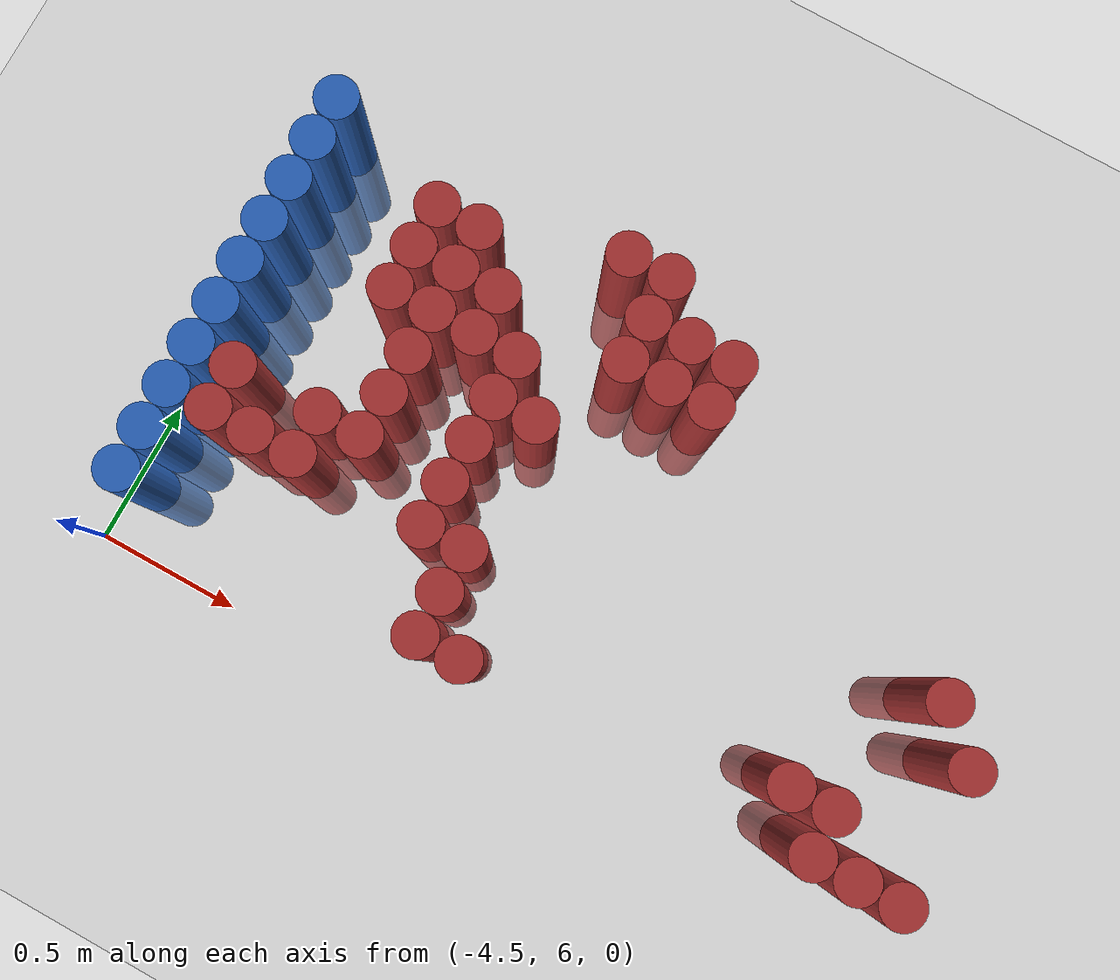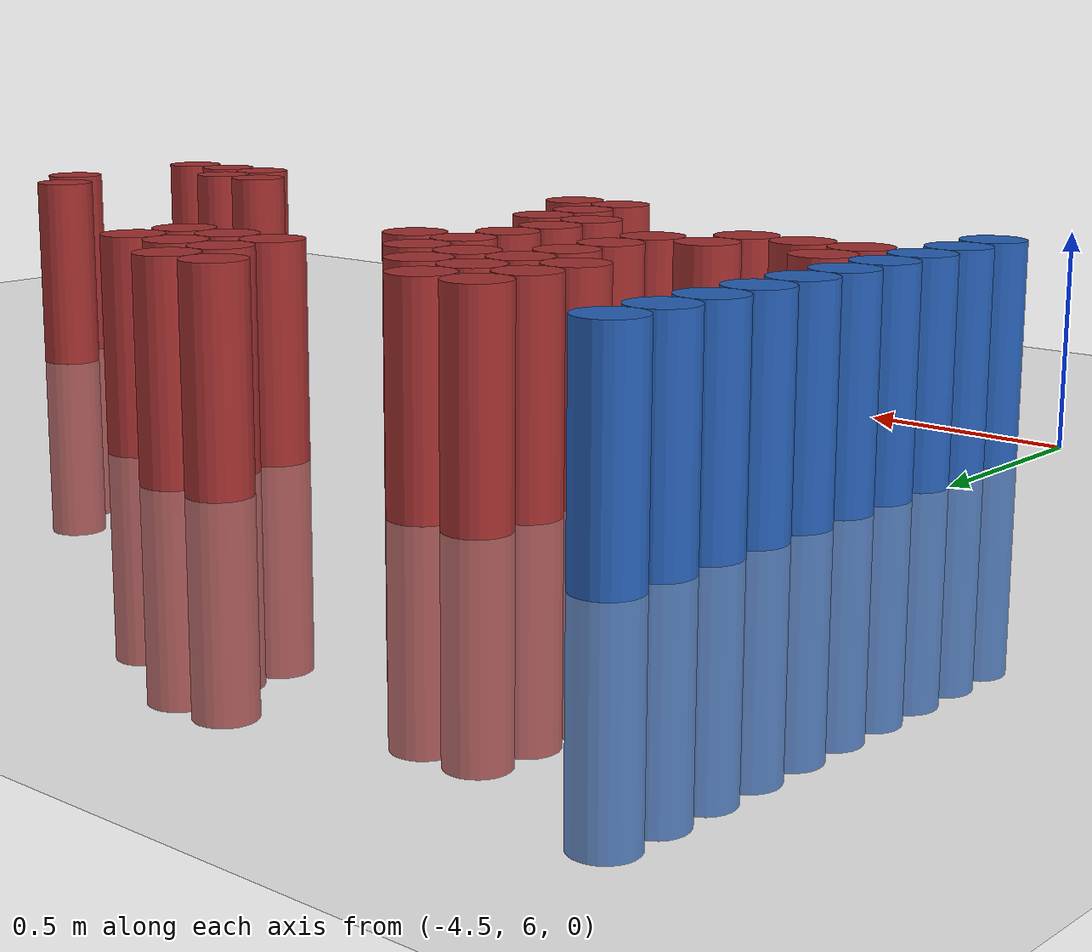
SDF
<sdf version="1.6">
 <world name="default">
  <model name="ground_plane">
   <static>1</static>
   <link name="link">
    <collision name="collision">
     <geometry><plane><normal>0 0 1</normal><size>100 100</size></plane></geometry>
     <surface><friction><ode><mu>100</mu><mu2>50</mu2></ode></friction></surface>
    </collision>
    <visual name="visual">
     <cast_shadows>0</cast_shadows>
     <geometry><plane><normal>0 0 1</normal><size>100 100</size></plane></geometry>
     <material>
      <script><uri>file://media/materials/scripts/gazebo.material</uri><name>Gazebo/Grey</name></script>
     </material>
    </visual>
   </link>
  </model>
  <model name="unit_cylinder_103">
   <static>1</static>
   <pose>-4.425000 6.225000 0.000000 0.000000 0.000000 0.000000</pose>
   <link name="link">
    <inertial>
     <mass>1</mass>
     <inertia><ixx>0.145833</ixx><ixy>0</ixy><ixz>0</ixz><iyy>0.145833</iyy><iyz>0</iyz><izz>0.125</izz></inertia>
    </inertial>
    <collision name="collision">
     <geometry><cylinder><radius>0.075000</radius><length>1</length></cylinder></geometry>
    </collision>
    <visual name="visual">
     <geometry><cylinder><radius>0.075000</radius><length>1</length></cylinder></geometry>
     <material>
      <ambient>0.152000 0.379000 0.720000 1</ambient>
      <diffuse>0.152000 0.379000 0.720000 1</diffuse>
     </material>
     <material>
      <script><name>Gazebo/Grey</name><uri>file://media/materials/scripts/gazebo.material</uri></script>
     </material>
    </visual>
   </link>
  </model>
  <model name="unit_cylinder_104">
   <static>1</static>
   <pose>-4.425000 6.375000 0.000000 0.000000 0.000000 0.000000</pose>
   <link name="link">
    <inertial>
     <mass>1</mass>
     <inertia><ixx>0.145833</ixx><ixy>0</ixy><ixz>0</ixz><iyy>0.145833</iyy><iyz>0</iyz><izz>0.125</izz></inertia>
    </inertial>
    <collision name="collision">
     <geometry><cylinder><radius>0.075000</radius><length>1</length></cylinder></geometry>
    </collision>
    <visual name="visual">
     <geometry><cylinder><radius>0.075000</radius><length>1</length></cylinder></geometry>
     <material>
      <ambient>0.152000 0.379000 0.720000 1</ambient>
      <diffuse>0.152000 0.379000 0.720000 1</diffuse>
     </material>
     <material>
      <script><name>Gazebo/Grey</name><uri>file://media/materials/scripts/gazebo.material</uri></script>
     </material>
    </visual>
   </link>
  </model>
  <model name="unit_cylinder_105">
   <static>1</static>
   <pose>-4.425000 6.525000 0.000000 0.000000 0.000000 0.000000</pose>
   <link name="link">
    <inertial>
     <mass>1</mass>
     <inertia><ixx>0.145833</ixx><ixy>0</ixy><ixz>0</ixz><iyy>0.145833</iyy><iyz>0</iyz><izz>0.125</izz></inertia>
    </inertial>
    <collision name="collision">
     <geometry><cylinder><radius>0.075000</radius><length>1</length></cylinder></geometry>
    </collision>
    <visual name="visual">
     <geometry><cylinder><radius>0.075000</radius><length>1</length></cylinder></geometry>
     <material>
      <ambient>0.152000 0.379000 0.720000 1</ambient>
      <diffuse>0.152000 0.379000 0.720000 1</diffuse>
     </material>
     <material>
      <script><name>Gazebo/Grey</name><uri>file://media/materials/scripts/gazebo.material</uri></script>
     </material>
    </visual>
   </link>
  </model>
  <model name="unit_cylinder_106">
   <static>1</static>
   <pose>-4.425000 6.675000 0.000000 0.000000 0.000000 0.000000</pose>
   <link name="link">
    <inertial>
     <mass>1</mass>
     <inertia><ixx>0.145833</ixx><ixy>0</ixy><ixz>0</ixz><iyy>0.145833</iyy><iyz>0</iyz><izz>0.125</izz></inertia>
    </inertial>
    <collision name="collision">
     <geometry><cylinder><radius>0.075000</radius><length>1</length></cylinder></geometry>
    </collision>
    <visual name="visual">
     <geometry><cylinder><radius>0.075000</radius><length>1</length></cylinder></geometry>
     <material>
      <ambient>0.152000 0.379000 0.720000 1</ambient>
      <diffuse>0.152000 0.379000 0.720000 1</diffuse>
     </material>
     <material>
      <script><name>Gazebo/Grey</name><uri>file://media/materials/scripts/gazebo.material</uri></script>
     </material>
    </visual>
   </link>
  </model>
  <model name="unit_cylinder_107">
   <static>1</static>
   <pose>-4.425000 6.825000 0.000000 0.000000 0.000000 0.000000</pose>
   <link name="link">
    <inertial>
     <mass>1</mass>
     <inertia><ixx>0.145833</ixx><ixy>0</ixy><ixz>0</ixz><iyy>0.145833</iyy><iyz>0</iyz><izz>0.125</izz></inertia>
    </inertial>
    <collision name="collision">
     <geometry><cylinder><radius>0.075000</radius><length>1</length></cylinder></geometry>
    </collision>
    <visual name="visual">
     <geometry><cylinder><radius>0.075000</radius><length>1</length></cylinder></geometry>
     <material>
      <ambient>0.152000 0.379000 0.720000 1</ambient>
      <diffuse>0.152000 0.379000 0.720000 1</diffuse>
     </material>
     <material>
      <script><name>Gazebo/Grey</name><uri>file://media/materials/scripts/gazebo.material</uri></script>
     </material>
    </visual>
   </link>
  </model>
  <model name="unit_cylinder_108">
   <static>1</static>
   <pose>-4.425000 6.975000 0.000000 0.000000 0.000000 0.000000</pose>
   <link name="link">
    <inertial>
     <mass>1</mass>
     <inertia><ixx>0.145833</ixx><ixy>0</ixy><ixz>0</ixz><iyy>0.145833</iyy><iyz>0</iyz><izz>0.125</izz></inertia>
    </inertial>
    <collision name="collision">
     <geometry><cylinder><radius>0.075000</radius><length>1</length></cylinder></geometry>
    </collision>
    <visual name="visual">
     <geometry><cylinder><radius>0.075000</radius><length>1</length></cylinder></geometry>
     <material>
      <ambient>0.152000 0.379000 0.720000 1</ambient>
      <diffuse>0.152000 0.379000 0.720000 1</diffuse>
     </material>
     <material>
      <script><name>Gazebo/Grey</name><uri>file://media/materials/scripts/gazebo.material</uri></script>
     </material>
    </visual>
   </link>
  </model>
  <model name="unit_cylinder_109">
   <static>1</static>
   <pose>-4.425000 7.125000 0.000000 0.000000 0.000000 0.000000</pose>
   <link name="link">
    <inertial>
     <mass>1</mass>
     <inertia><ixx>0.145833</ixx><ixy>0</ixy><ixz>0</ixz><iyy>0.145833</iyy><iyz>0</iyz><izz>0.125</izz></inertia>
    </inertial>
    <collision name="collision">
     <geometry><cylinder><radius>0.075000</radius><length>1</length></cylinder></geometry>
    </collision>
    <visual name="visual">
     <geometry><cylinder><radius>0.075000</radius><length>1</length></cylinder></geometry>
     <material>
      <ambient>0.152000 0.379000 0.720000 1</ambient>
      <diffuse>0.152000 0.379000 0.720000 1</diffuse>
     </material>
     <material>
      <script><name>Gazebo/Grey</name><uri>file://media/materials/scripts/gazebo.material</uri></script>
     </material>
    </visual>
   </link>
  </model>
  <model name="unit_cylinder_110">
   <static>1</static>
   <pose>-4.425000 7.275000 0.000000 0.000000 0.000000 0.000000</pose>
   <link name="link">
    <inertial>
     <mass>1</mass>
     <inertia><ixx>0.145833</ixx><ixy>0</ixy><ixz>0</ixz><iyy>0.145833</iyy><iyz>0</iyz><izz>0.125</izz></inertia>
    </inertial>
    <collision name="collision">
     <geometry><cylinder><radius>0.075000</radius><length>1</length></cylinder></geometry>
    </collision>
    <visual name="visual">
     <geometry><cylinder><radius>0.075000</radius><length>1</length></cylinder></geometry>
     <material>
      <ambient>0.152000 0.379000 0.720000 1</ambient>
      <diffuse>0.152000 0.379000 0.720000 1</diffuse>
     </material>
     <material>
      <script><name>Gazebo/Grey</name><uri>file://media/materials/scripts/gazebo.material</uri></script>
     </material>
    </visual>
   </link>
  </model>
  <model name="unit_cylinder_111">
   <static>1</static>
   <pose>-4.425000 7.425000 0.000000 0.000000 0.000000 0.000000</pose>
   <link name="link">
    <inertial>
     <mass>1</mass>
     <inertia><ixx>0.145833</ixx><ixy>0</ixy><ixz>0</ixz><iyy>0.145833</iyy><iyz>0</iyz><izz>0.125</izz></inertia>
    </inertial>
    <collision name="collision">
     <geometry><cylinder><radius>0.075000</radius><length>1</length></cylinder></geometry>
    </collision>
    <visual name="visual">
     <geometry><cylinder><radius>0.075000</radius><length>1</length></cylinder></geometry>
     <material>
      <ambient>0.152000 0.379000 0.720000 1</ambient>
      <diffuse>0.152000 0.379000 0.720000 1</diffuse>
     </material>
     <material>
      <script><name>Gazebo/Grey</name><uri>file://media/materials/scripts/gazebo.material</uri></script>
     </material>
    </visual>
   </link>
  </model>
  <model name="unit_cylinder_112">
   <static>1</static>
   <pose>-4.425000 7.575000 0.000000 0.000000 0.000000 0.000000</pose>
   <link name="link">
    <inertial>
     <mass>1</mass>
     <inertia><ixx>0.145833</ixx><ixy>0</ixy><ixz>0</ixz><iyy>0.145833</iyy><iyz>0</iyz><izz>0.125</izz></inertia>
    </inertial>
    <collision name="collision">
     <geometry><cylinder><radius>0.075000</radius><length>1</length></cylinder></geometry>
    </collision>
    <visual name="visual">
     <geometry><cylinder><radius>0.075000</radius><length>1</length></cylinder></geometry>
     <material>
      <ambient>0.152000 0.379000 0.720000 1</ambient>
      <diffuse>0.152000 0.379000 0.720000 1</diffuse>
     </material>
     <material>
      <script><name>Gazebo/Grey</name><uri>file://media/materials/scripts/gazebo.material</uri></script>
     </material>
    </visual>
   </link>
  </model>
  <model name="unit_cylinder_127">
   <static>1</static>
   <pose>-4.275000 6.525000 0.000000 0.000000 0.000000 0.000000</pose>
   <link name="link">
    <inertial>
     <mass>1</mass>
     <inertia><ixx>0.145833</ixx><ixy>0</ixy><ixz>0</ixz><iyy>0.145833</iyy><iyz>0</iyz><izz>0.125</izz></inertia>
    </inertial>
    <collision name="collision">
     <geometry><cylinder><radius>0.075000</radius><length>1</length></cylinder></geometry>
    </collision>
    <visual name="visual">
     <geometry><cylinder><radius>0.075000</radius><length>1</length></cylinder></geometry>
     <material>
      <ambient>0.648000 0.192000 0.192000 1</ambient>
      <diffuse>0.648000 0.192000 0.192000 1</diffuse>
     </material>
     <material>
      <script><name>Gazebo/Grey</name><uri>file://media/materials/scripts/gazebo.material</uri></script>
     </material>
    </visual>
   </link>
  </model>
  <model name="unit_cylinder_128">
   <static>1</static>
   <pose>-4.275000 6.675000 0.000000 0.000000 0.000000 0.000000</pose>
   <link name="link">
    <inertial>
     <mass>1</mass>
     <inertia><ixx>0.145833</ixx><ixy>0</ixy><ixz>0</ixz><iyy>0.145833</iyy><iyz>0</iyz><izz>0.125</izz></inertia>
    </inertial>
    <collision name="collision">
     <geometry><cylinder><radius>0.075000</radius><length>1</length></cylinder></geometry>
    </collision>
    <visual name="visual">
     <geometry><cylinder><radius>0.075000</radius><length>1</length></cylinder></geometry>
     <material>
      <ambient>0.648000 0.192000 0.192000 1</ambient>
      <diffuse>0.648000 0.192000 0.192000 1</diffuse>
     </material>
     <material>
      <script><name>Gazebo/Grey</name><uri>file://media/materials/scripts/gazebo.material</uri></script>
     </material>
    </visual>
   </link>
  </model>
  <model name="unit_cylinder_137">
   <static>1</static>
   <pose>-4.125000 6.525000 0.000000 0.000000 0.000000 0.000000</pose>
   <link name="link">
    <inertial>
     <mass>1</mass>
     <inertia><ixx>0.145833</ixx><ixy>0</ixy><ixz>0</ixz><iyy>0.145833</iyy><iyz>0</iyz><izz>0.125</izz></inertia>
    </inertial>
    <collision name="collision">
     <geometry><cylinder><radius>0.075000</radius><length>1</length></cylinder></geometry>
    </collision>
    <visual name="visual">
     <geometry><cylinder><radius>0.075000</radius><length>1</length></cylinder></geometry>
     <material>
      <ambient>0.648000 0.192000 0.192000 1</ambient>
      <diffuse>0.648000 0.192000 0.192000 1</diffuse>
     </material>
     <material>
      <script><name>Gazebo/Grey</name><uri>file://media/materials/scripts/gazebo.material</uri></script>
     </material>
    </visual>
   </link>
  </model>
  <model name="unit_cylinder_144">
   <static>1</static>
   <pose>-3.975000 6.525000 0.000000 0.000000 0.000000 0.000000</pose>
   <link name="link">
    <inertial>
     <mass>1</mass>
     <inertia><ixx>0.145833</ixx><ixy>0</ixy><ixz>0</ixz><iyy>0.145833</iyy><iyz>0</iyz><izz>0.125</izz></inertia>
    </inertial>
    <collision name="collision">
     <geometry><cylinder><radius>0.075000</radius><length>1</length></cylinder></geometry>
    </collision>
    <visual name="visual">
     <geometry><cylinder><radius>0.075000</radius><length>1</length></cylinder></geometry>
     <material>
      <ambient>0.648000 0.192000 0.192000 1</ambient>
      <diffuse>0.648000 0.192000 0.192000 1</diffuse>
     </material>
     <material>
      <script><name>Gazebo/Grey</name><uri>file://media/materials/scripts/gazebo.material</uri></script>
     </material>
    </visual>
   </link>
  </model>
  <model name="unit_cylinder_145">
   <static>1</static>
   <pose>-3.975000 6.675000 0.000000 0.000000 0.000000 0.000000</pose>
   <link name="link">
    <inertial>
     <mass>1</mass>
     <inertia><ixx>0.145833</ixx><ixy>0</ixy><ixz>0</ixz><iyy>0.145833</iyy><iyz>0</iyz><izz>0.125</izz></inertia>
    </inertial>
    <collision name="collision">
     <geometry><cylinder><radius>0.075000</radius><length>1</length></cylinder></geometry>
    </collision>
    <visual name="visual">
     <geometry><cylinder><radius>0.075000</radius><length>1</length></cylinder></geometry>
     <material>
      <ambient>0.648000 0.192000 0.192000 1</ambient>
      <diffuse>0.648000 0.192000 0.192000 1</diffuse>
     </material>
     <material>
      <script><name>Gazebo/Grey</name><uri>file://media/materials/scripts/gazebo.material</uri></script>
     </material>
    </visual>
   </link>
  </model>
  <model name="unit_cylinder_146">
   <static>1</static>
   <pose>-3.975000 7.125000 0.000000 0.000000 0.000000 0.000000</pose>
   <link name="link">
    <inertial>
     <mass>1</mass>
     <inertia><ixx>0.145833</ixx><ixy>0</ixy><ixz>0</ixz><iyy>0.145833</iyy><iyz>0</iyz><izz>0.125</izz></inertia>
    </inertial>
    <collision name="collision">
     <geometry><cylinder><radius>0.075000</radius><length>1</length></cylinder></geometry>
    </collision>
    <visual name="visual">
     <geometry><cylinder><radius>0.075000</radius><length>1</length></cylinder></geometry>
     <material>
      <ambient>0.648000 0.192000 0.192000 1</ambient>
      <diffuse>0.648000 0.192000 0.192000 1</diffuse>
     </material>
     <material>
      <script><name>Gazebo/Grey</name><uri>file://media/materials/scripts/gazebo.material</uri></script>
     </material>
    </visual>
   </link>
  </model>
  <model name="unit_cylinder_147">
   <static>1</static>
   <pose>-3.975000 7.275000 0.000000 0.000000 0.000000 0.000000</pose>
   <link name="link">
    <inertial>
     <mass>1</mass>
     <inertia><ixx>0.145833</ixx><ixy>0</ixy><ixz>0</ixz><iyy>0.145833</iyy><iyz>0</iyz><izz>0.125</izz></inertia>
    </inertial>
    <collision name="collision">
     <geometry><cylinder><radius>0.075000</radius><length>1</length></cylinder></geometry>
    </collision>
    <visual name="visual">
     <geometry><cylinder><radius>0.075000</radius><length>1</length></cylinder></geometry>
     <material>
      <ambient>0.648000 0.192000 0.192000 1</ambient>
      <diffuse>0.648000 0.192000 0.192000 1</diffuse>
     </material>
     <material>
      <script><name>Gazebo/Grey</name><uri>file://media/materials/scripts/gazebo.material</uri></script>
     </material>
    </visual>
   </link>
  </model>
  <model name="unit_cylinder_148">
   <static>1</static>
   <pose>-3.975000 7.425000 0.000000 0.000000 0.000000 0.000000</pose>
   <link name="link">
    <inertial>
     <mass>1</mass>
     <inertia><ixx>0.145833</ixx><ixy>0</ixy><ixz>0</ixz><iyy>0.145833</iyy><iyz>0</iyz><izz>0.125</izz></inertia>
    </inertial>
    <collision name="collision">
     <geometry><cylinder><radius>0.075000</radius><length>1</length></cylinder></geometry>
    </collision>
    <visual name="visual">
     <geometry><cylinder><radius>0.075000</radius><length>1</length></cylinder></geometry>
     <material>
      <ambient>0.648000 0.192000 0.192000 1</ambient>
      <diffuse>0.648000 0.192000 0.192000 1</diffuse>
     </material>
     <material>
      <script><name>Gazebo/Grey</name><uri>file://media/materials/scripts/gazebo.material</uri></script>
     </material>
    </visual>
   </link>
  </model>
  <model name="unit_cylinder_154">
   <static>1</static>
   <pose>-3.825000 6.675000 0.000000 0.000000 0.000000 0.000000</pose>
   <link name="link">
    <inertial>
     <mass>1</mass>
     <inertia><ixx>0.145833</ixx><ixy>0</ixy><ixz>0</ixz><iyy>0.145833</iyy><iyz>0</iyz><izz>0.125</izz></inertia>
    </inertial>
    <collision name="collision">
     <geometry><cylinder><radius>0.075000</radius><length>1</length></cylinder></geometry>
    </collision>
    <visual name="visual">
     <geometry><cylinder><radius>0.075000</radius><length>1</length></cylinder></geometry>
     <material>
      <ambient>0.648000 0.192000 0.192000 1</ambient>
      <diffuse>0.648000 0.192000 0.192000 1</diffuse>
     </material>
     <material>
      <script><name>Gazebo/Grey</name><uri>file://media/materials/scripts/gazebo.material</uri></script>
     </material>
    </visual>
   </link>
  </model>
  <model name="unit_cylinder_155">
   <static>1</static>
   <pose>-3.825000 6.825000 0.000000 0.000000 0.000000 0.000000</pose>
   <link name="link">
    <inertial>
     <mass>1</mass>
     <inertia><ixx>0.145833</ixx><ixy>0</ixy><ixz>0</ixz><iyy>0.145833</iyy><iyz>0</iyz><izz>0.125</izz></inertia>
    </inertial>
    <collision name="collision">
     <geometry><cylinder><radius>0.075000</radius><length>1</length></cylinder></geometry>
    </collision>
    <visual name="visual">
     <geometry><cylinder><radius>0.075000</radius><length>1</length></cylinder></geometry>
     <material>
      <ambient>0.648000 0.192000 0.192000 1</ambient>
      <diffuse>0.648000 0.192000 0.192000 1</diffuse>
     </material>
     <material>
      <script><name>Gazebo/Grey</name><uri>file://media/materials/scripts/gazebo.material</uri></script>
     </material>
    </visual>
   </link>
  </model>
  <model name="unit_cylinder_156">
   <static>1</static>
   <pose>-3.825000 6.975000 0.000000 0.000000 0.000000 0.000000</pose>
   <link name="link">
    <inertial>
     <mass>1</mass>
     <inertia><ixx>0.145833</ixx><ixy>0</ixy><ixz>0</ixz><iyy>0.145833</iyy><iyz>0</iyz><izz>0.125</izz></inertia>
    </inertial>
    <collision name="collision">
     <geometry><cylinder><radius>0.075000</radius><length>1</length></cylinder></geometry>
    </collision>
    <visual name="visual">
     <geometry><cylinder><radius>0.075000</radius><length>1</length></cylinder></geometry>
     <material>
      <ambient>0.648000 0.192000 0.192000 1</ambient>
      <diffuse>0.648000 0.192000 0.192000 1</diffuse>
     </material>
     <material>
      <script><name>Gazebo/Grey</name><uri>file://media/materials/scripts/gazebo.material</uri></script>
     </material>
    </visual>
   </link>
  </model>
  <model name="unit_cylinder_157">
   <static>1</static>
   <pose>-3.825000 7.125000 0.000000 0.000000 0.000000 0.000000</pose>
   <link name="link">
    <inertial>
     <mass>1</mass>
     <inertia><ixx>0.145833</ixx><ixy>0</ixy><ixz>0</ixz><iyy>0.145833</iyy><iyz>0</iyz><izz>0.125</izz></inertia>
    </inertial>
    <collision name="collision">
     <geometry><cylinder><radius>0.075000</radius><length>1</length></cylinder></geometry>
    </collision>
    <visual name="visual">
     <geometry><cylinder><radius>0.075000</radius><length>1</length></cylinder></geometry>
     <material>
      <ambient>0.648000 0.192000 0.192000 1</ambient>
      <diffuse>0.648000 0.192000 0.192000 1</diffuse>
     </material>
     <material>
      <script><name>Gazebo/Grey</name><uri>file://media/materials/scripts/gazebo.material</uri></script>
     </material>
    </visual>
   </link>
  </model>
  <model name="unit_cylinder_158">
   <static>1</static>
   <pose>-3.825000 7.275000 0.000000 0.000000 0.000000 0.000000</pose>
   <link name="link">
    <inertial>
     <mass>1</mass>
     <inertia><ixx>0.145833</ixx><ixy>0</ixy><ixz>0</ixz><iyy>0.145833</iyy><iyz>0</iyz><izz>0.125</izz></inertia>
    </inertial>
    <collision name="collision">
     <geometry><cylinder><radius>0.075000</radius><length>1</length></cylinder></geometry>
    </collision>
    <visual name="visual">
     <geometry><cylinder><radius>0.075000</radius><length>1</length></cylinder></geometry>
     <material>
      <ambient>0.648000 0.192000 0.192000 1</ambient>
      <diffuse>0.648000 0.192000 0.192000 1</diffuse>
     </material>
     <material>
      <script><name>Gazebo/Grey</name><uri>file://media/materials/scripts/gazebo.material</uri></script>
     </material>
    </visual>
   </link>
  </model>
  <model name="unit_cylinder_159">
   <static>1</static>
   <pose>-3.825000 7.425000 0.000000 0.000000 0.000000 0.000000</pose>
   <link name="link">
    <inertial>
     <mass>1</mass>
     <inertia><ixx>0.145833</ixx><ixy>0</ixy><ixz>0</ixz><iyy>0.145833</iyy><iyz>0</iyz><izz>0.125</izz></inertia>
    </inertial>
    <collision name="collision">
     <geometry><cylinder><radius>0.075000</radius><length>1</length></cylinder></geometry>
    </collision>
    <visual name="visual">
     <geometry><cylinder><radius>0.075000</radius><length>1</length></cylinder></geometry>
     <material>
      <ambient>0.648000 0.192000 0.192000 1</ambient>
      <diffuse>0.648000 0.192000 0.192000 1</diffuse>
     </material>
     <material>
      <script><name>Gazebo/Grey</name><uri>file://media/materials/scripts/gazebo.material</uri></script>
     </material>
    </visual>
   </link>
  </model>
  <model name="unit_cylinder_165">
   <static>1</static>
   <pose>-3.675000 7.125000 0.000000 0.000000 0.000000 0.000000</pose>
   <link name="link">
    <inertial>
     <mass>1</mass>
     <inertia><ixx>0.145833</ixx><ixy>0</ixy><ixz>0</ixz><iyy>0.145833</iyy><iyz>0</iyz><izz>0.125</izz></inertia>
    </inertial>
    <collision name="collision">
     <geometry><cylinder><radius>0.075000</radius><length>1</length></cylinder></geometry>
    </collision>
    <visual name="visual">
     <geometry><cylinder><radius>0.075000</radius><length>1</length></cylinder></geometry>
     <material>
      <ambient>0.648000 0.192000 0.192000 1</ambient>
      <diffuse>0.648000 0.192000 0.192000 1</diffuse>
     </material>
     <material>
      <script><name>Gazebo/Grey</name><uri>file://media/materials/scripts/gazebo.material</uri></script>
     </material>
    </visual>
   </link>
  </model>
  <model name="unit_cylinder_166">
   <static>1</static>
   <pose>-3.675000 7.275000 0.000000 0.000000 0.000000 0.000000</pose>
   <link name="link">
    <inertial>
     <mass>1</mass>
     <inertia><ixx>0.145833</ixx><ixy>0</ixy><ixz>0</ixz><iyy>0.145833</iyy><iyz>0</iyz><izz>0.125</izz></inertia>
    </inertial>
    <collision name="collision">
     <geometry><cylinder><radius>0.075000</radius><length>1</length></cylinder></geometry>
    </collision>
    <visual name="visual">
     <geometry><cylinder><radius>0.075000</radius><length>1</length></cylinder></geometry>
     <material>
      <ambient>0.648000 0.192000 0.192000 1</ambient>
      <diffuse>0.648000 0.192000 0.192000 1</diffuse>
     </material>
     <material>
      <script><name>Gazebo/Grey</name><uri>file://media/materials/scripts/gazebo.material</uri></script>
     </material>
    </visual>
   </link>
  </model>
  <model name="unit_cylinder_175">
   <static>1</static>
   <pose>-3.525000 6.525000 0.000000 0.000000 0.000000 0.000000</pose>
   <link name="link">
    <inertial>
     <mass>1</mass>
     <inertia><ixx>0.145833</ixx><ixy>0</ixy><ixz>0</ixz><iyy>0.145833</iyy><iyz>0</iyz><izz>0.125</izz></inertia>
    </inertial>
    <collision name="collision">
     <geometry><cylinder><radius>0.075000</radius><length>1</length></cylinder></geometry>
    </collision>
    <visual name="visual">
     <geometry><cylinder><radius>0.075000</radius><length>1</length></cylinder></geometry>
     <material>
      <ambient>0.648000 0.192000 0.192000 1</ambient>
      <diffuse>0.648000 0.192000 0.192000 1</diffuse>
     </material>
     <material>
      <script><name>Gazebo/Grey</name><uri>file://media/materials/scripts/gazebo.material</uri></script>
     </material>
    </visual>
   </link>
  </model>
  <model name="unit_cylinder_176">
   <static>1</static>
   <pose>-3.525000 6.675000 0.000000 0.000000 0.000000 0.000000</pose>
   <link name="link">
    <inertial>
     <mass>1</mass>
     <inertia><ixx>0.145833</ixx><ixy>0</ixy><ixz>0</ixz><iyy>0.145833</iyy><iyz>0</iyz><izz>0.125</izz></inertia>
    </inertial>
    <collision name="collision">
     <geometry><cylinder><radius>0.075000</radius><length>1</length></cylinder></geometry>
    </collision>
    <visual name="visual">
     <geometry><cylinder><radius>0.075000</radius><length>1</length></cylinder></geometry>
     <material>
      <ambient>0.648000 0.192000 0.192000 1</ambient>
      <diffuse>0.648000 0.192000 0.192000 1</diffuse>
     </material>
     <material>
      <script><name>Gazebo/Grey</name><uri>file://media/materials/scripts/gazebo.material</uri></script>
     </material>
    </visual>
   </link>
  </model>
  <model name="unit_cylinder_177">
   <static>1</static>
   <pose>-3.525000 6.825000 0.000000 0.000000 0.000000 0.000000</pose>
   <link name="link">
    <inertial>
     <mass>1</mass>
     <inertia><ixx>0.145833</ixx><ixy>0</ixy><ixz>0</ixz><iyy>0.145833</iyy><iyz>0</iyz><izz>0.125</izz></inertia>
    </inertial>
    <collision name="collision">
     <geometry><cylinder><radius>0.075000</radius><length>1</length></cylinder></geometry>
    </collision>
    <visual name="visual">
     <geometry><cylinder><radius>0.075000</radius><length>1</length></cylinder></geometry>
     <material>
      <ambient>0.648000 0.192000 0.192000 1</ambient>
      <diffuse>0.648000 0.192000 0.192000 1</diffuse>
     </material>
     <material>
      <script><name>Gazebo/Grey</name><uri>file://media/materials/scripts/gazebo.material</uri></script>
     </material>
    </visual>
   </link>
  </model>
  <model name="unit_cylinder_178">
   <static>1</static>
   <pose>-3.525000 6.975000 0.000000 0.000000 0.000000 0.000000</pose>
   <link name="link">
    <inertial>
     <mass>1</mass>
     <inertia><ixx>0.145833</ixx><ixy>0</ixy><ixz>0</ixz><iyy>0.145833</iyy><iyz>0</iyz><izz>0.125</izz></inertia>
    </inertial>
    <collision name="collision">
     <geometry><cylinder><radius>0.075000</radius><length>1</length></cylinder></geometry>
    </collision>
    <visual name="visual">
     <geometry><cylinder><radius>0.075000</radius><length>1</length></cylinder></geometry>
     <material>
      <ambient>0.648000 0.192000 0.192000 1</ambient>
      <diffuse>0.648000 0.192000 0.192000 1</diffuse>
     </material>
     <material>
      <script><name>Gazebo/Grey</name><uri>file://media/materials/scripts/gazebo.material</uri></script>
     </material>
    </visual>
   </link>
  </model>
  <model name="unit_cylinder_179">
   <static>1</static>
   <pose>-3.525000 7.125000 0.000000 0.000000 0.000000 0.000000</pose>
   <link name="link">
    <inertial>
     <mass>1</mass>
     <inertia><ixx>0.145833</ixx><ixy>0</ixy><ixz>0</ixz><iyy>0.145833</iyy><iyz>0</iyz><izz>0.125</izz></inertia>
    </inertial>
    <collision name="collision">
     <geometry><cylinder><radius>0.075000</radius><length>1</length></cylinder></geometry>
    </collision>
    <visual name="visual">
     <geometry><cylinder><radius>0.075000</radius><length>1</length></cylinder></geometry>
     <material>
      <ambient>0.648000 0.192000 0.192000 1</ambient>
      <diffuse>0.648000 0.192000 0.192000 1</diffuse>
     </material>
     <material>
      <script><name>Gazebo/Grey</name><uri>file://media/materials/scripts/gazebo.material</uri></script>
     </material>
    </visual>
   </link>
  </model>
  <model name="unit_cylinder_188">
   <static>1</static>
   <pose>-3.375000 6.225000 0.000000 0.000000 0.000000 0.000000</pose>
   <link name="link">
    <inertial>
     <mass>1</mass>
     <inertia><ixx>0.145833</ixx><ixy>0</ixy><ixz>0</ixz><iyy>0.145833</iyy><iyz>0</iyz><izz>0.125</izz></inertia>
    </inertial>
    <collision name="collision">
     <geometry><cylinder><radius>0.075000</radius><length>1</length></cylinder></geometry>
    </collision>
    <visual name="visual">
     <geometry><cylinder><radius>0.075000</radius><length>1</length></cylinder></geometry>
     <material>
      <ambient>0.648000 0.192000 0.192000 1</ambient>
      <diffuse>0.648000 0.192000 0.192000 1</diffuse>
     </material>
     <material>
      <script><name>Gazebo/Grey</name><uri>file://media/materials/scripts/gazebo.material</uri></script>
     </material>
    </visual>
   </link>
  </model>
  <model name="unit_cylinder_189">
   <static>1</static>
   <pose>-3.375000 6.375000 0.000000 0.000000 0.000000 0.000000</pose>
   <link name="link">
    <inertial>
     <mass>1</mass>
     <inertia><ixx>0.145833</ixx><ixy>0</ixy><ixz>0</ixz><iyy>0.145833</iyy><iyz>0</iyz><izz>0.125</izz></inertia>
    </inertial>
    <collision name="collision">
     <geometry><cylinder><radius>0.075000</radius><length>1</length></cylinder></geometry>
    </collision>
    <visual name="visual">
     <geometry><cylinder><radius>0.075000</radius><length>1</length></cylinder></geometry>
     <material>
      <ambient>0.648000 0.192000 0.192000 1</ambient>
      <diffuse>0.648000 0.192000 0.192000 1</diffuse>
     </material>
     <material>
      <script><name>Gazebo/Grey</name><uri>file://media/materials/scripts/gazebo.material</uri></script>
     </material>
    </visual>
   </link>
  </model>
  <model name="unit_cylinder_190">
   <static>1</static>
   <pose>-3.375000 6.525000 0.000000 0.000000 0.000000 0.000000</pose>
   <link name="link">
    <inertial>
     <mass>1</mass>
     <inertia><ixx>0.145833</ixx><ixy>0</ixy><ixz>0</ixz><iyy>0.145833</iyy><iyz>0</iyz><izz>0.125</izz></inertia>
    </inertial>
    <collision name="collision">
     <geometry><cylinder><radius>0.075000</radius><length>1</length></cylinder></geometry>
    </collision>
    <visual name="visual">
     <geometry><cylinder><radius>0.075000</radius><length>1</length></cylinder></geometry>
     <material>
      <ambient>0.648000 0.192000 0.192000 1</ambient>
      <diffuse>0.648000 0.192000 0.192000 1</diffuse>
     </material>
     <material>
      <script><name>Gazebo/Grey</name><uri>file://media/materials/scripts/gazebo.material</uri></script>
     </material>
    </visual>
   </link>
  </model>
  <model name="unit_cylinder_191">
   <static>1</static>
   <pose>-3.375000 6.975000 0.000000 0.000000 0.000000 0.000000</pose>
   <link name="link">
    <inertial>
     <mass>1</mass>
     <inertia><ixx>0.145833</ixx><ixy>0</ixy><ixz>0</ixz><iyy>0.145833</iyy><iyz>0</iyz><izz>0.125</izz></inertia>
    </inertial>
    <collision name="collision">
     <geometry><cylinder><radius>0.075000</radius><length>1</length></cylinder></geometry>
    </collision>
    <visual name="visual">
     <geometry><cylinder><radius>0.075000</radius><length>1</length></cylinder></geometry>
     <material>
      <ambient>0.648000 0.192000 0.192000 1</ambient>
      <diffuse>0.648000 0.192000 0.192000 1</diffuse>
     </material>
     <material>
      <script><name>Gazebo/Grey</name><uri>file://media/materials/scripts/gazebo.material</uri></script>
     </material>
    </visual>
   </link>
  </model>
  <model name="unit_cylinder_192">
   <static>1</static>
   <pose>-3.375000 7.575000 0.000000 0.000000 0.000000 0.000000</pose>
   <link name="link">
    <inertial>
     <mass>1</mass>
     <inertia><ixx>0.145833</ixx><ixy>0</ixy><ixz>0</ixz><iyy>0.145833</iyy><iyz>0</iyz><izz>0.125</izz></inertia>
    </inertial>
    <collision name="collision">
     <geometry><cylinder><radius>0.075000</radius><length>1</length></cylinder></geometry>
    </collision>
    <visual name="visual">
     <geometry><cylinder><radius>0.075000</radius><length>1</length></cylinder></geometry>
     <material>
      <ambient>0.648000 0.192000 0.192000 1</ambient>
      <diffuse>0.648000 0.192000 0.192000 1</diffuse>
     </material>
     <material>
      <script><name>Gazebo/Grey</name><uri>file://media/materials/scripts/gazebo.material</uri></script>
     </material>
    </visual>
   </link>
  </model>
  <model name="unit_cylinder_200">
   <static>1</static>
   <pose>-3.225000 6.225000 0.000000 0.000000 0.000000 0.000000</pose>
   <link name="link">
    <inertial>
     <mass>1</mass>
     <inertia><ixx>0.145833</ixx><ixy>0</ixy><ixz>0</ixz><iyy>0.145833</iyy><iyz>0</iyz><izz>0.125</izz></inertia>
    </inertial>
    <collision name="collision">
     <geometry><cylinder><radius>0.075000</radius><length>1</length></cylinder></geometry>
    </collision>
    <visual name="visual">
     <geometry><cylinder><radius>0.075000</radius><length>1</length></cylinder></geometry>
     <material>
      <ambient>0.648000 0.192000 0.192000 1</ambient>
      <diffuse>0.648000 0.192000 0.192000 1</diffuse>
     </material>
     <material>
      <script><name>Gazebo/Grey</name><uri>file://media/materials/scripts/gazebo.material</uri></script>
     </material>
    </visual>
   </link>
  </model>
  <model name="unit_cylinder_201">
   <static>1</static>
   <pose>-3.225000 7.275000 0.000000 0.000000 0.000000 0.000000</pose>
   <link name="link">
    <inertial>
     <mass>1</mass>
     <inertia><ixx>0.145833</ixx><ixy>0</ixy><ixz>0</ixz><iyy>0.145833</iyy><iyz>0</iyz><izz>0.125</izz></inertia>
    </inertial>
    <collision name="collision">
     <geometry><cylinder><radius>0.075000</radius><length>1</length></cylinder></geometry>
    </collision>
    <visual name="visual">
     <geometry><cylinder><radius>0.075000</radius><length>1</length></cylinder></geometry>
     <material>
      <ambient>0.648000 0.192000 0.192000 1</ambient>
      <diffuse>0.648000 0.192000 0.192000 1</diffuse>
     </material>
     <material>
      <script><name>Gazebo/Grey</name><uri>file://media/materials/scripts/gazebo.material</uri></script>
     </material>
    </visual>
   </link>
  </model>
  <model name="unit_cylinder_202">
   <static>1</static>
   <pose>-3.225000 7.425000 0.000000 0.000000 0.000000 0.000000</pose>
   <link name="link">
    <inertial>
     <mass>1</mass>
     <inertia><ixx>0.145833</ixx><ixy>0</ixy><ixz>0</ixz><iyy>0.145833</iyy><iyz>0</iyz><izz>0.125</izz></inertia>
    </inertial>
    <collision name="collision">
     <geometry><cylinder><radius>0.075000</radius><length>1</length></cylinder></geometry>
    </collision>
    <visual name="visual">
     <geometry><cylinder><radius>0.075000</radius><length>1</length></cylinder></geometry>
     <material>
      <ambient>0.648000 0.192000 0.192000 1</ambient>
      <diffuse>0.648000 0.192000 0.192000 1</diffuse>
     </material>
     <material>
      <script><name>Gazebo/Grey</name><uri>file://media/materials/scripts/gazebo.material</uri></script>
     </material>
    </visual>
   </link>
  </model>
  <model name="unit_cylinder_203">
   <static>1</static>
   <pose>-3.225000 7.575000 0.000000 0.000000 0.000000 0.000000</pose>
   <link name="link">
    <inertial>
     <mass>1</mass>
     <inertia><ixx>0.145833</ixx><ixy>0</ixy><ixz>0</ixz><iyy>0.145833</iyy><iyz>0</iyz><izz>0.125</izz></inertia>
    </inertial>
    <collision name="collision">
     <geometry><cylinder><radius>0.075000</radius><length>1</length></cylinder></geometry>
    </collision>
    <visual name="visual">
     <geometry><cylinder><radius>0.075000</radius><length>1</length></cylinder></geometry>
     <material>
      <ambient>0.648000 0.192000 0.192000 1</ambient>
      <diffuse>0.648000 0.192000 0.192000 1</diffuse>
     </material>
     <material>
      <script><name>Gazebo/Grey</name><uri>file://media/materials/scripts/gazebo.material</uri></script>
     </material>
    </visual>
   </link>
  </model>
  <model name="unit_cylinder_209">
   <static>1</static>
   <pose>-3.075000 7.275000 0.000000 0.000000 0.000000 0.000000</pose>
   <link name="link">
    <inertial>
     <mass>1</mass>
     <inertia><ixx>0.145833</ixx><ixy>0</ixy><ixz>0</ixz><iyy>0.145833</iyy><iyz>0</iyz><izz>0.125</izz></inertia>
    </inertial>
    <collision name="collision">
     <geometry><cylinder><radius>0.075000</radius><length>1</length></cylinder></geometry>
    </collision>
    <visual name="visual">
     <geometry><cylinder><radius>0.075000</radius><length>1</length></cylinder></geometry>
     <material>
      <ambient>0.648000 0.192000 0.192000 1</ambient>
      <diffuse>0.648000 0.192000 0.192000 1</diffuse>
     </material>
     <material>
      <script><name>Gazebo/Grey</name><uri>file://media/materials/scripts/gazebo.material</uri></script>
     </material>
    </visual>
   </link>
  </model>
  <model name="unit_cylinder_210">
   <static>1</static>
   <pose>-3.075000 7.425000 0.000000 0.000000 0.000000 0.000000</pose>
   <link name="link">
    <inertial>
     <mass>1</mass>
     <inertia><ixx>0.145833</ixx><ixy>0</ixy><ixz>0</ixz><iyy>0.145833</iyy><iyz>0</iyz><izz>0.125</izz></inertia>
    </inertial>
    <collision name="collision">
     <geometry><cylinder><radius>0.075000</radius><length>1</length></cylinder></geometry>
    </collision>
    <visual name="visual">
     <geometry><cylinder><radius>0.075000</radius><length>1</length></cylinder></geometry>
     <material>
      <ambient>0.648000 0.192000 0.192000 1</ambient>
      <diffuse>0.648000 0.192000 0.192000 1</diffuse>
     </material>
     <material>
      <script><name>Gazebo/Grey</name><uri>file://media/materials/scripts/gazebo.material</uri></script>
     </material>
    </visual>
   </link>
  </model>
  <model name="unit_cylinder_214">
   <static>1</static>
   <pose>-2.925000 7.275000 0.000000 0.000000 0.000000 0.000000</pose>
   <link name="link">
    <inertial>
     <mass>1</mass>
     <inertia><ixx>0.145833</ixx><ixy>0</ixy><ixz>0</ixz><iyy>0.145833</iyy><iyz>0</iyz><izz>0.125</izz></inertia>
    </inertial>
    <collision name="collision">
     <geometry><cylinder><radius>0.075000</radius><length>1</length></cylinder></geometry>
    </collision>
    <visual name="visual">
     <geometry><cylinder><radius>0.075000</radius><length>1</length></cylinder></geometry>
     <material>
      <ambient>0.648000 0.192000 0.192000 1</ambient>
      <diffuse>0.648000 0.192000 0.192000 1</diffuse>
     </material>
     <material>
      <script><name>Gazebo/Grey</name><uri>file://media/materials/scripts/gazebo.material</uri></script>
     </material>
    </visual>
   </link>
  </model>
  <model name="unit_cylinder_215">
   <static>1</static>
   <pose>-2.925000 7.425000 0.000000 0.000000 0.000000 0.000000</pose>
   <link name="link">
    <inertial>
     <mass>1</mass>
     <inertia><ixx>0.145833</ixx><ixy>0</ixy><ixz>0</ixz><iyy>0.145833</iyy><iyz>0</iyz><izz>0.125</izz></inertia>
    </inertial>
    <collision name="collision">
     <geometry><cylinder><radius>0.075000</radius><length>1</length></cylinder></geometry>
    </collision>
    <visual name="visual">
     <geometry><cylinder><radius>0.075000</radius><length>1</length></cylinder></geometry>
     <material>
      <ambient>0.648000 0.192000 0.192000 1</ambient>
      <diffuse>0.648000 0.192000 0.192000 1</diffuse>
     </material>
     <material>
      <script><name>Gazebo/Grey</name><uri>file://media/materials/scripts/gazebo.material</uri></script>
     </material>
    </visual>
   </link>
  </model>
  <model name="unit_cylinder_217">
   <static>1</static>
   <pose>-2.175000 6.375000 0.000000 0.000000 0.000000 0.000000</pose>
   <link name="link">
    <inertial>
     <mass>1</mass>
     <inertia><ixx>0.145833</ixx><ixy>0</ixy><ixz>0</ixz><iyy>0.145833</iyy><iyz>0</iyz><izz>0.125</izz></inertia>
    </inertial>
    <collision name="collision">
     <geometry><cylinder><radius>0.075000</radius><length>1</length></cylinder></geometry>
    </collision>
    <visual name="visual">
     <geometry><cylinder><radius>0.075000</radius><length>1</length></cylinder></geometry>
     <material>
      <ambient>0.648000 0.192000 0.192000 1</ambient>
      <diffuse>0.648000 0.192000 0.192000 1</diffuse>
     </material>
     <material>
      <script><name>Gazebo/Grey</name><uri>file://media/materials/scripts/gazebo.material</uri></script>
     </material>
    </visual>
   </link>
  </model>
  <model name="unit_cylinder_222">
   <static>1</static>
   <pose>-2.025000 6.225000 0.000000 0.000000 0.000000 0.000000</pose>
   <link name="link">
    <inertial>
     <mass>1</mass>
     <inertia><ixx>0.145833</ixx><ixy>0</ixy><ixz>0</ixz><iyy>0.145833</iyy><iyz>0</iyz><izz>0.125</izz></inertia>
    </inertial>
    <collision name="collision">
     <geometry><cylinder><radius>0.075000</radius><length>1</length></cylinder></geometry>
    </collision>
    <visual name="visual">
     <geometry><cylinder><radius>0.075000</radius><length>1</length></cylinder></geometry>
     <material>
      <ambient>0.648000 0.192000 0.192000 1</ambient>
      <diffuse>0.648000 0.192000 0.192000 1</diffuse>
     </material>
     <material>
      <script><name>Gazebo/Grey</name><uri>file://media/materials/scripts/gazebo.material</uri></script>
     </material>
    </visual>
   </link>
  </model>
  <model name="unit_cylinder_223">
   <static>1</static>
   <pose>-2.025000 6.375000 0.000000 0.000000 0.000000 0.000000</pose>
   <link name="link">
    <inertial>
     <mass>1</mass>
     <inertia><ixx>0.145833</ixx><ixy>0</ixy><ixz>0</ixz><iyy>0.145833</iyy><iyz>0</iyz><izz>0.125</izz></inertia>
    </inertial>
    <collision name="collision">
     <geometry><cylinder><radius>0.075000</radius><length>1</length></cylinder></geometry>
    </collision>
    <visual name="visual">
     <geometry><cylinder><radius>0.075000</radius><length>1</length></cylinder></geometry>
     <material>
      <ambient>0.648000 0.192000 0.192000 1</ambient>
      <diffuse>0.648000 0.192000 0.192000 1</diffuse>
     </material>
     <material>
      <script><name>Gazebo/Grey</name><uri>file://media/materials/scripts/gazebo.material</uri></script>
     </material>
    </visual>
   </link>
  </model>
  <model name="unit_cylinder_227">
   <static>1</static>
   <pose>-1.875000 6.225000 0.000000 0.000000 0.000000 0.000000</pose>
   <link name="link">
    <inertial>
     <mass>1</mass>
     <inertia><ixx>0.145833</ixx><ixy>0</ixy><ixz>0</ixz><iyy>0.145833</iyy><iyz>0</iyz><izz>0.125</izz></inertia>
    </inertial>
    <collision name="collision">
     <geometry><cylinder><radius>0.075000</radius><length>1</length></cylinder></geometry>
    </collision>
    <visual name="visual">
     <geometry><cylinder><radius>0.075000</radius><length>1</length></cylinder></geometry>
     <material>
      <ambient>0.648000 0.192000 0.192000 1</ambient>
      <diffuse>0.648000 0.192000 0.192000 1</diffuse>
     </material>
     <material>
      <script><name>Gazebo/Grey</name><uri>file://media/materials/scripts/gazebo.material</uri></script>
     </material>
    </visual>
   </link>
  </model>
  <model name="unit_cylinder_228">
   <static>1</static>
   <pose>-1.875000 6.825000 0.000000 0.000000 0.000000 0.000000</pose>
   <link name="link">
    <inertial>
     <mass>1</mass>
     <inertia><ixx>0.145833</ixx><ixy>0</ixy><ixz>0</ixz><iyy>0.145833</iyy><iyz>0</iyz><izz>0.125</izz></inertia>
    </inertial>
    <collision name="collision">
     <geometry><cylinder><radius>0.075000</radius><length>1</length></cylinder></geometry>
    </collision>
    <visual name="visual">
     <geometry><cylinder><radius>0.075000</radius><length>1</length></cylinder></geometry>
     <material>
      <ambient>0.648000 0.192000 0.192000 1</ambient>
      <diffuse>0.648000 0.192000 0.192000 1</diffuse>
     </material>
     <material>
      <script><name>Gazebo/Grey</name><uri>file://media/materials/scripts/gazebo.material</uri></script>
     </material>
    </visual>
   </link>
  </model>
  <model name="unit_cylinder_237">
   <static>1</static>
   <pose>-1.725000 6.225000 0.000000 0.000000 0.000000 0.000000</pose>
   <link name="link">
    <inertial>
     <mass>1</mass>
     <inertia><ixx>0.145833</ixx><ixy>0</ixy><ixz>0</ixz><iyy>0.145833</iyy><iyz>0</iyz><izz>0.125</izz></inertia>
    </inertial>
    <collision name="collision">
     <geometry><cylinder><radius>0.075000</radius><length>1</length></cylinder></geometry>
    </collision>
    <visual name="visual">
     <geometry><cylinder><radius>0.075000</radius><length>1</length></cylinder></geometry>
     <material>
      <ambient>0.648000 0.192000 0.192000 1</ambient>
      <diffuse>0.648000 0.192000 0.192000 1</diffuse>
     </material>
     <material>
      <script><name>Gazebo/Grey</name><uri>file://media/materials/scripts/gazebo.material</uri></script>
     </material>
    </visual>
   </link>
  </model>
  <model name="unit_cylinder_238">
   <static>1</static>
   <pose>-1.725000 6.675000 0.000000 0.000000 0.000000 0.000000</pose>
   <link name="link">
    <inertial>
     <mass>1</mass>
     <inertia><ixx>0.145833</ixx><ixy>0</ixy><ixz>0</ixz><iyy>0.145833</iyy><iyz>0</iyz><izz>0.125</izz></inertia>
    </inertial>
    <collision name="collision">
     <geometry><cylinder><radius>0.075000</radius><length>1</length></cylinder></geometry>
    </collision>
    <visual name="visual">
     <geometry><cylinder><radius>0.075000</radius><length>1</length></cylinder></geometry>
     <material>
      <ambient>0.648000 0.192000 0.192000 1</ambient>
      <diffuse>0.648000 0.192000 0.192000 1</diffuse>
     </material>
     <material>
      <script><name>Gazebo/Grey</name><uri>file://media/materials/scripts/gazebo.material</uri></script>
     </material>
    </visual>
   </link>
  </model>
 </world>
</sdf>
